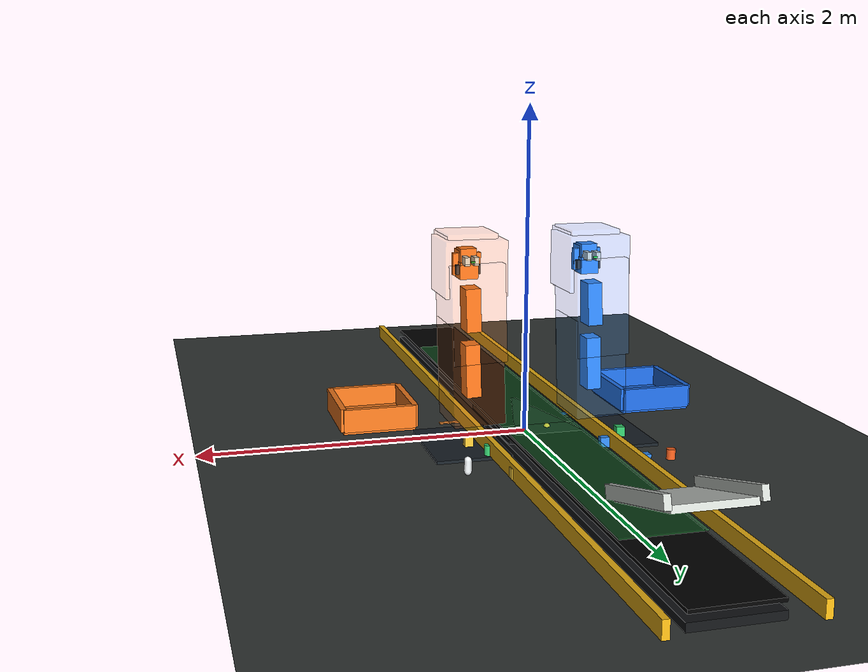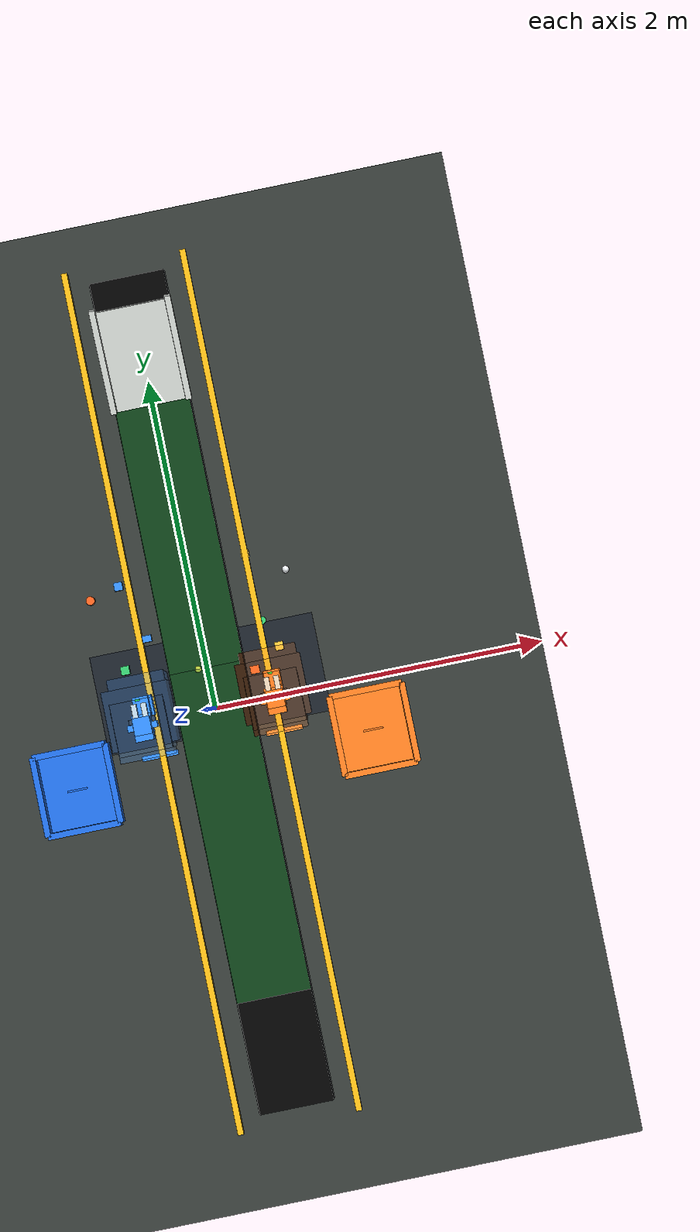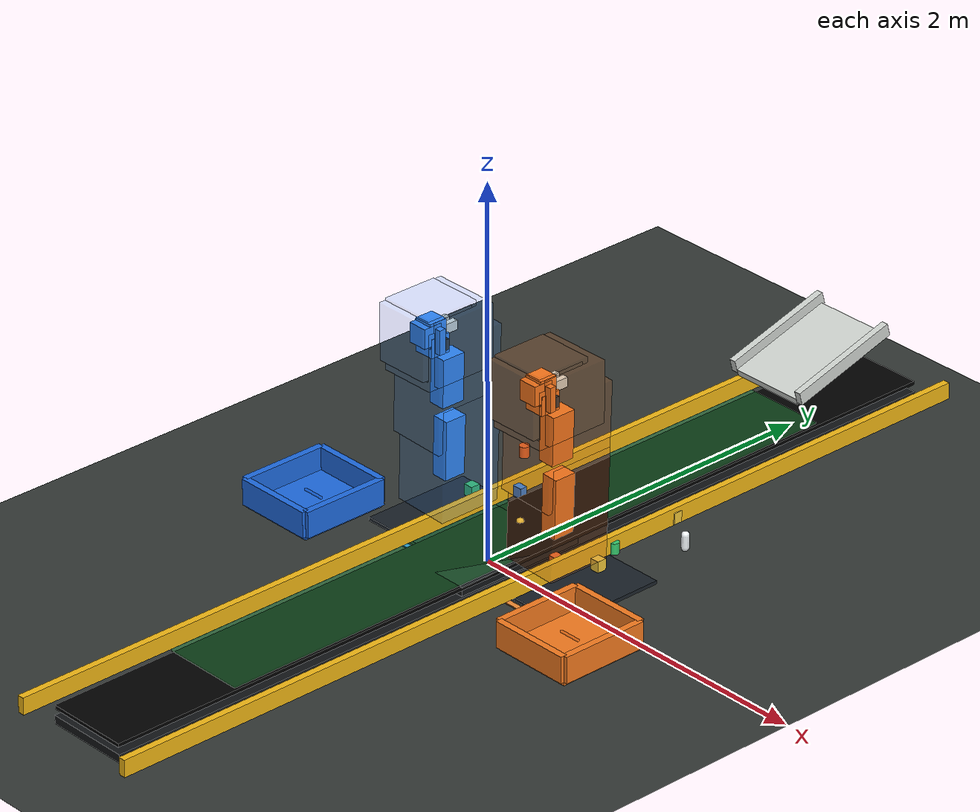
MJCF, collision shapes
<mujoco model="nova5_dual_arm_sorting_line">
  <compiler angle="radian" autolimits="true"/>

  <option timestep="0.002" gravity="0 0 -9.81" integrator="implicitfast"/>

  <visual>
    <global azimuth="140" elevation="-28"/>
    <map force="0.1" znear="0.01"/>
    <headlight ambient="0.38 0.38 0.38" diffuse="0.72 0.72 0.72" specular="0.12 0.12 0.12"/>
  </visual>

  <default>
    <joint damping="2.0" armature="0.02" frictionloss="0.02"/>
    <geom contype="0" conaffinity="0" density="0"/>
    <site type="box" rgba="0.1 0.45 0.9 0.8"/>
  </default>

  <asset>
    <material name="floor_mat" rgba="0.20 0.22 0.21 1"/>
    <material name="rail_mat" rgba="0.82 0.84 0.82 1"/>
    <material name="station_mat" rgba="0.10 0.13 0.16 1"/>
    <material name="tray_mat" rgba="0.28 0.30 0.31 1"/>
    <material name="slot_mat" rgba="0.95 0.96 0.92 1"/>
    <material name="part_blue" rgba="0.20 0.55 0.95 1"/>
    <material name="part_green" rgba="0.20 0.78 0.42 1"/>
    <material name="part_yellow" rgba="0.95 0.78 0.22 1"/>
    <material name="part_orange" rgba="0.96 0.38 0.12 1"/>
    <material name="part_white" rgba="0.92 0.94 0.95 1"/>
    <material name="gripper_mat" rgba="0.16 0.18 0.20 1"/>
    <material name="finger_mat" rgba="0.88 0.90 0.86 1"/>
    <material name="belt_mat" rgba="0.07 0.08 0.09 1"/>
    <material name="guard_mat" rgba="0.95 0.72 0.08 0.32"/>
    <material name="reject_mat" rgba="0.82 0.20 0.16 1"/>
    <material name="finished_mat" rgba="0.20 0.68 0.42 1"/>
    <material name="left_bin_mat" rgba="0.12 0.42 0.88 1"/>
    <material name="right_bin_mat" rgba="0.96 0.48 0.12 1"/>
    <material name="sensor_mat" rgba="0.10 0.92 0.78 0.85"/>

    <mesh name="base_link" content_type="model/stl" file="../meshes/nova5/base_link.STL"/>
    <mesh name="Link1" content_type="model/stl" file="../meshes/nova5/Link1.STL"/>
    <mesh name="Link2" content_type="model/stl" file="../meshes/nova5/Link2.STL"/>
    <mesh name="Link3" content_type="model/stl" file="../meshes/nova5/Link3.STL"/>
    <mesh name="Link4" content_type="model/stl" file="../meshes/nova5/Link4.STL"/>
    <mesh name="Link5" content_type="model/stl" file="../meshes/nova5/Link5.STL"/>
    <mesh name="Link6" content_type="model/stl" file="../meshes/nova5/Link6.STL"/>
  </asset>

  <worldbody>
    <light name="top_light" pos="0 -0.4 3.0" dir="0 0 -1"/>
    <light name="infeed_light" pos="0 1.2 1.4" dir="0 -1 -0.6"/>

    <geom name="floor" type="plane" pos="0 0 -0.002" size="2.0 3.0 0.02" material="floor_mat" contype="32" conaffinity="32"/>

    <!-- Upstream feeder. Parts enter the long conveyor from this end. -->
    <body name="sloped_outlet" pos="0 2.12 0.35">
      <geom name="outlet_ramp" type="box" size="0.205 0.30 0.018" euler="0.28 0 0" material="rail_mat" contype="1" conaffinity="24" friction="0.10 0.01 0.001"/>
      <geom name="outlet_left_rail" type="box" pos="-0.225 0 0.035" size="0.018 0.31 0.035" euler="0.28 0 0" material="rail_mat" contype="1" conaffinity="24"/>
      <geom name="outlet_right_rail" type="box" pos="0.225 0 0.035" size="0.018 0.31 0.035" euler="0.28 0 0" material="rail_mat" contype="1" conaffinity="24"/>
    </body>

    <!-- An eight-segment, physics-driven conveyor. Python moves each segment
         downstream; contact friction carries free objects without teleporting them. -->
    <body name="conveyor_frame" pos="0 0.10 0">
      <geom name="conveyor_safety_underlay" type="box" pos="0 0 0.022" size="0.230 2.53 0.022" material="belt_mat" contype="32" conaffinity="32" friction="0.8 0.02 0.001"/>
      <!-- Low guide rails leave a top-entry opening for the physical gripper. -->
      <!-- Rails sit outside the 45 cm belt surface. This preserves physical
           containment without stealing the gripper's edge-pick clearance. -->
      <!-- Guard layer is distinct from the belt layer: finger pads may skim
           the moving belt, but no finger or arm may pass through the guards. -->
      <geom name="conveyor_left_guard" type="box" pos="-0.360 0 0.075" size="0.018 2.62 0.045" material="guard_mat" contype="2" conaffinity="0"/>
      <geom name="conveyor_right_guard" type="box" pos="0.360 0 0.075" size="0.018 2.62 0.045" material="guard_mat" contype="2" conaffinity="0"/>
      <site name="vision_pick_window" pos="0 0 0.135" size="0.210 1.85 0.003" rgba="0 0 0 0"/>
      <site name="infeed_part_present" pos="0 2.15 0.135" size="0.205 0.08 0.004" rgba="0 0 0 0"/>
      <site name="tail_exit_sensor" pos="0 -2.35 0.135" size="0.205 0.08 0.004" rgba="0 0 0 0"/>
    </body>
    <body name="conveyor_collision_surface" pos="0 0.10 0">
      <!-- Match the moving segment top (z=0.10 m) so payloads cannot fall
           through at a segment seam or collide with two different heights. -->
      <geom name="conveyor_belt_collision" type="box" pos="0 0 0.090" size="0.225 2.53 0.010" material="belt_mat" rgba="0 0 0 0" contype="32" conaffinity="32" friction="1.4 0.02 0.001"/>
    </body>
    <geom name="shared_belt_front_test_zone" type="box" pos="0 1.10 0.116" size="0.225 0.85 0.004" rgba="0.20 0.90 0.35 0.28" contype="0" conaffinity="0"/>
    <geom name="shared_belt_back_test_zone" type="box" pos="0 -0.75 0.116" size="0.225 1.00 0.004" rgba="0.20 0.90 0.35 0.28" contype="0" conaffinity="0"/>
    <body name="belt_segment_01" pos="0 0 0.075">
      <joint name="belt_segment_01_slide" type="slide" axis="0 1 0" limited="false"/>
      <geom name="belt_segment_01_geom" type="box" size="0.225 0.37 0.025" material="belt_mat" mass="3" contype="32" conaffinity="32" friction="1.4 0.02 0.001"/>
    </body>
    <body name="belt_segment_02" pos="0 0 0.075">
      <joint name="belt_segment_02_slide" type="slide" axis="0 1 0" limited="false"/>
      <geom name="belt_segment_02_geom" type="box" size="0.225 0.37 0.025" material="belt_mat" mass="3" contype="32" conaffinity="32" friction="1.4 0.02 0.001"/>
    </body>
    <body name="belt_segment_03" pos="0 0 0.075">
      <joint name="belt_segment_03_slide" type="slide" axis="0 1 0" limited="false"/>
      <geom name="belt_segment_03_geom" type="box" size="0.225 0.37 0.025" material="belt_mat" mass="3" contype="32" conaffinity="32" friction="1.4 0.02 0.001"/>
    </body>
    <body name="belt_segment_04" pos="0 0 0.075">
      <joint name="belt_segment_04_slide" type="slide" axis="0 1 0" limited="false"/>
      <geom name="belt_segment_04_geom" type="box" size="0.225 0.37 0.025" material="belt_mat" mass="3" contype="32" conaffinity="32" friction="1.4 0.02 0.001"/>
    </body>
    <body name="belt_segment_05" pos="0 0 0.075">
      <joint name="belt_segment_05_slide" type="slide" axis="0 1 0" limited="false"/>
      <geom name="belt_segment_05_geom" type="box" size="0.225 0.37 0.025" material="belt_mat" mass="3" contype="32" conaffinity="32" friction="1.4 0.02 0.001"/>
    </body>
    <body name="belt_segment_06" pos="0 0 0.075">
      <joint name="belt_segment_06_slide" type="slide" axis="0 1 0" limited="false"/>
      <geom name="belt_segment_06_geom" type="box" size="0.225 0.37 0.025" material="belt_mat" mass="3" contype="32" conaffinity="32" friction="1.4 0.02 0.001"/>
    </body>
    <body name="belt_segment_07" pos="0 0 0.075">
      <joint name="belt_segment_07_slide" type="slide" axis="0 1 0" limited="false"/>
      <geom name="belt_segment_07_geom" type="box" size="0.225 0.37 0.025" material="belt_mat" mass="3" contype="32" conaffinity="32" friction="1.4 0.02 0.001"/>
    </body>
    <body name="belt_segment_08" pos="0 0 0.075">
      <joint name="belt_segment_08_slide" type="slide" axis="0 1 0" limited="false"/>
      <geom name="belt_segment_08_geom" type="box" size="0.225 0.37 0.025" material="belt_mat" mass="3" contype="32" conaffinity="32" friction="1.4 0.02 0.001"/>
    </body>

    <!-- Physical end states: rejected parts and a finished output bin. -->

    <camera name="overhead_inspection_camera" pos="0 0.92 2.65" xyaxes="1 0 0 0 0.91 0.41" fovy="52"/>
    <camera name="line_overview_camera" pos="0 -2.10 1.85" xyaxes="1 0 0 0 0.66 0.75" fovy="52"/>

    <body name="part_01" pos="-0.42 0.83 0.065">
      <freejoint/>
      <geom type="box" size="0.025 0.025 0.030" material="part_blue" mass="0.060" contype="32" conaffinity="32" friction="2.0 0.02 0.001"/>
    </body>
    <body name="part_02" pos="-0.15 0.92 0.065">
      <freejoint/>
      <geom type="box" size="0.023 0.023 0.030" material="part_green" mass="0.060" contype="32" conaffinity="32" friction="2.0 0.02 0.001"/>
    </body>
    <body name="part_03" pos="0.36 0.87 0.065">
      <freejoint/>
      <geom type="box" size="0.024 0.024 0.030" material="part_yellow" mass="0.060" contype="32" conaffinity="32" friction="2.0 0.02 0.001"/>
    </body>
    <body name="part_04" pos="0.12 0.56 0.065">
      <freejoint/>
      <geom type="box" size="0.024 0.024 0.030" material="part_blue" mass="0.060" contype="32" conaffinity="32" friction="2.0 0.02 0.001"/>
    </body>
    <body name="part_05" pos="-0.48 0.33 0.065">
      <freejoint/>
      <geom type="box" size="0.026 0.026 0.030" material="part_green" mass="0.060" contype="32" conaffinity="32" friction="2.0 0.02 0.001"/>
    </body>
    <body name="part_06" pos="0.45 0.29 0.065">
      <freejoint/>
      <geom type="box" size="0.025 0.025 0.030" material="part_yellow" mass="0.060" contype="32" conaffinity="32" friction="2.0 0.02 0.001"/>
    </body>
    <body name="part_07" pos="-0.60 0.78 0.060">
      <freejoint/>
      <geom type="cylinder" size="0.026 0.030" material="part_orange" mass="0.060" contype="32" conaffinity="32" friction="2.0 0.02 0.001"/>
    </body>
    <body name="part_08" pos="0.58 0.73 0.074">
      <freejoint/>
      <geom type="capsule" size="0.021 0.032" material="part_white" mass="0.060" contype="32" conaffinity="32" friction="2.0 0.02 0.001"/>
    </body>
    <body name="part_09" pos="-0.32 0.49 0.062">
      <freejoint/>
      <geom type="box" size="0.032 0.020 0.030" material="part_blue" mass="0.060" contype="32" conaffinity="32" friction="2.0 0.02 0.001"/>
    </body>
    <body name="part_10" pos="0.38 0.46 0.060">
      <freejoint/>
      <geom type="cylinder" size="0.024 0.030" material="part_green" mass="0.060" contype="32" conaffinity="32" friction="2.0 0.02 0.001"/>
    </body>
    <body name="part_11" pos="-0.05 0.25 0.070">
      <freejoint/>
      <geom type="capsule" size="0.020 0.029" material="part_yellow" mass="0.027" contype="1" conaffinity="1" friction="0.10 0.02 0.001"/>
    </body>
    <body name="part_12" pos="0.28 0.18 0.064">
      <freejoint/>
      <geom type="box" size="0.028 0.024 0.017" material="part_orange" mass="0.034" contype="1" conaffinity="1" friction="0.10 0.02 0.001"/>
    </body>
    <body name="part_13" pos="-0.10 1.80 0.062">
      <freejoint/>
      <geom type="box" size="0.025 0.025 0.018" material="part_white" mass="0.035" contype="1" conaffinity="1" friction="0.10 0.02 0.001"/>
    </body>
    <body name="part_14" pos="0.12 1.45 0.060">
      <freejoint/>
      <geom type="cylinder" size="0.023 0.018" material="part_blue" mass="0.029" contype="1" conaffinity="1" friction="0.10 0.02 0.001"/>
    </body>

    <!-- Robot A station. -->
    <body name="robot_A_base" pos="-0.38 0.15 0">
      <geom name="robot_A_station_plate" type="box" pos="0 0 -0.001" size="0.30 0.30 0.012" material="station_mat" contype="1" conaffinity="24"/>
      <site name="robot_A_label" pos="0 -0.36 0.02" size="0.11 0.015 0.003" rgba="0.2 0.55 1 1"/>
      <geom name="A_base_visual" type="mesh" rgba="0.792157 0.819608 0.933333 1" mesh="base_link"/>
      <body name="A_Link1" pos="0 0 0.24">
        <inertial pos="9.18643e-06 -0.0217708 -0.0261834" quat="0.684555 0.177181 -0.176991 0.684592" mass="1.08091" diaginertia="0.00284011 0.00265963 0.00128069"/>
        <joint name="A_joint1" pos="0 0 0" axis="0 0 1" range="-3.1416 3.1416" limited="true" damping="3.0" armature="0.03"/>
        <geom name="A_Link1_visual" type="mesh" rgba="0.792157 0.819608 0.933333 1" mesh="Link1"/>
        <body name="A_Link2" quat="-0.491193 -0.49119 -0.508657 0.508654">
          <inertial pos="-0.199338 -0.00696463 0.109209" quat="-0.0124484 0.700654 0.0122458 0.713287" mass="2.54585" diaginertia="0.0643202 0.0637511 0.00275793"/>
          <joint name="A_joint2" pos="0 0 0" axis="0 0 1" range="-3.14 3.14" limited="true" damping="4.0" armature="0.04"/>
          <geom name="A_Link2_visual" type="mesh" rgba="0.792157 0.819608 0.933333 1" mesh="Link2" contype="0" conaffinity="0"/>
          <geom name="A_upper_arm_collision" type="box" pos="-0.20 -0.007 0.055" size="0.16 0.045 0.060" rgba="0.20 0.55 1 0.13" contype="8" conaffinity="17"/>
          <geom name="A_upper_arm_warning" type="box" pos="-0.20 -0.007 0.055" size="0.30 0.155 0.175" rgba="0.20 0.55 1 0.035" contype="0" conaffinity="0"/>
          <body name="A_Link3" pos="-0.399756 -0.013969 0">
            <inertial pos="-0.152357 -0.00535717 0.0198992" quat="-0.0125445 0.707695 0.0121512 0.706302" mass="1.40746" diaginertia="0.0235997 0.0232013 0.00098083"/>
            <joint name="A_joint3" pos="0 0 0" axis="0 0 1" range="-2.79 2.79" limited="true" damping="3.0" armature="0.03"/>
            <geom name="A_Link3_visual" type="mesh" rgba="0.792157 0.819608 0.933333 1" mesh="Link3" contype="0" conaffinity="0"/>
            <geom name="A_forearm_collision" type="box" pos="-0.165 -0.006 0.065" size="0.13 0.045 0.065" rgba="0.20 0.55 1 0.13" contype="8" conaffinity="17"/>
            <geom name="A_forearm_warning" type="box" pos="-0.165 -0.006 0.065" size="0.29 0.160 0.190" rgba="0.20 0.55 1 0.035" contype="0" conaffinity="0"/>
            <body name="A_Link4" pos="-0.329799 -0.0115244 0.135" quat="0.719348 0 0 -0.69465">
              <inertial pos="-6.37112e-06 -0.022759 -0.0202382" quat="0.648587 0.282308 -0.28212 0.648109" mass="0.439666" diaginertia="0.000676686 0.000634739 0.000253769"/>
              <joint name="A_joint4" pos="0 0 0" axis="0 0 1" range="-3.1416 3.1416" limited="true" damping="2.0" armature="0.02"/>
              <geom name="A_Link4_visual" type="mesh" rgba="0.792157 0.819608 0.933333 1" mesh="Link4" contype="0" conaffinity="0"/>
              <geom name="A_wrist_pitch_collision" type="box" pos="0 -0.055 0.020" size="0.055 0.050 0.055" rgba="0.20 0.55 1 0.13" contype="8" conaffinity="17"/>
              <geom name="A_wrist_pitch_warning" type="box" pos="0 -0.055 0" size="0.155 0.150 0.180" rgba="0.20 0.55 1 0.035" contype="0" conaffinity="0"/>
              <body name="A_Link5" pos="0 -0.12 0" quat="0.707105 0.707108 0 0">
                <inertial pos="-1.27926e-06 0.00190912 -0.00761119" quat="0.393821 0.587386 -0.587227 0.39376" mass="0.574835" diaginertia="0.00069052 0.000663177 0.000348157"/>
                <joint name="A_joint5" pos="0 0 0" axis="0 0 1" range="-3.1416 3.1416" limited="true" damping="2.0" armature="0.02"/>
                <geom name="A_Link5_visual" type="mesh" rgba="0.792157 0.819608 0.933333 1" mesh="Link5" contype="0" conaffinity="0"/>
                <geom name="A_wrist_yaw_collision" type="box" pos="0 0.030 0" size="0.050 0.050 0.065" rgba="0.20 0.55 1 0.13" contype="8" conaffinity="17"/>
                <geom name="A_wrist_yaw_warning" type="box" pos="0 0.030 0" size="0.150 0.150 0.165" rgba="0.20 0.55 1 0.035" contype="0" conaffinity="0"/>
                <body name="A_Link6" pos="0 0.088328 0" quat="0.707105 -0.707108 0 0">
                  <inertial pos="1.54762e-06 0.000151599 -0.0194592" quat="0.000736825 0.707106 0.000566044 0.707107" mass="0.12968" diaginertia="7.78631e-05 5.054e-05 5.02803e-05"/>
                  <joint name="A_joint6" pos="0 0 0" axis="0 0 1" range="-3.1416 3.1416" limited="true" damping="1.5" armature="0.015"/>
                  <geom name="A_Link6_visual" type="mesh" rgba="0.752941 0.752941 0.752941 1" mesh="Link6" contype="0" conaffinity="0"/>
                  <geom name="A_flange_collision" type="box" pos="0 0 -0.025" size="0.052 0.052 0.052" rgba="0.20 0.55 1 0.13" contype="8" conaffinity="17"/>
                  <geom name="A_flange_warning" type="box" pos="0 0 -0.025" size="0.152 0.152 0.152" rgba="0.20 0.55 1 0.035" contype="0" conaffinity="0"/>
                  <site name="A_flange" pos="0 0 0" size="0.018" rgba="0.2 0.5 1 1"/>
                  <body name="A_gripper" pos="0 0 -0.09">
                    <geom name="A_gripper_collision" type="box" pos="0 0.030 0.035" size="0.085 0.065 0.018" rgba="0.20 0.55 1 0.13" contype="8" conaffinity="17"/>
                    <geom name="A_gripper_warning" type="box" pos="0 0.030 -0.023" size="0.185 0.165 0.172" rgba="0.20 0.55 1 0.035" contype="0" conaffinity="0"/>
                    <geom name="A_gripper_palm" type="box" pos="0 0.060 0" size="0.075 0.028 0.014" material="gripper_mat" contype="64" conaffinity="65" mass="0.08"/>
                    <geom name="A_gripper_mount" type="cylinder" pos="0 0.060 0.035" size="0.035 0.018" material="gripper_mat" contype="64" conaffinity="65" mass="0.04"/>
                    <body name="A_left_finger" pos="-0.028 0 -0.055">
                      <joint name="A_left_finger_slide" type="slide" axis="-1 0 0" range="0 0.035" limited="true" damping="8"/>
                      <geom name="A_left_finger_pad" type="box" size="0.015 0.025 0.040" material="finger_mat" contype="32" conaffinity="33" mass="0.030" friction="4.0 0.05 0.001" solref="0.004 1" solimp="0.98 0.995 0.001" adhesion="0"/>
                    </body>
                    <body name="A_right_finger" pos="0.028 0 -0.055">
                      <joint name="A_right_finger_slide" type="slide" axis="1 0 0" range="0 0.035" limited="true" damping="8"/>
                      <geom name="A_right_finger_pad" type="box" size="0.015 0.025 0.040" material="finger_mat" contype="32" conaffinity="33" mass="0.030" friction="4.0 0.05 0.001" solref="0.004 1" solimp="0.98 0.995 0.001" adhesion="0"/>
                    </body>
                    <site name="A_tool0" pos="0 0 -0.115" size="0.012" rgba="0.1 0.9 0.2 1"/>
                    <site name="A_grasp_zone" type="box" pos="0 0 -0.055" size="0.040 0.026 0.042" rgba="0.10 0.92 0.78 0.20"/>
                  </body>
                </body>
              </body>
            </body>
          </body>
        </body>
      </body>
    </body>

    <!-- Robot B station. -->
    <body name="robot_B_base" pos="0.38 0.15 0">
      <geom name="robot_B_station_plate" type="box" pos="0 0 -0.001" size="0.30 0.30 0.012" material="station_mat" contype="1" conaffinity="24"/>
      <site name="robot_B_label" pos="0 -0.36 0.02" size="0.11 0.015 0.003" rgba="0.95 0.55 0.2 1"/>
      <geom name="B_base_visual" type="mesh" rgba="0.792157 0.819608 0.933333 1" mesh="base_link"/>
      <body name="B_Link1" pos="0 0 0.24">
        <inertial pos="9.18643e-06 -0.0217708 -0.0261834" quat="0.684555 0.177181 -0.176991 0.684592" mass="1.08091" diaginertia="0.00284011 0.00265963 0.00128069"/>
        <joint name="B_joint1" pos="0 0 0" axis="0 0 1" range="-3.1416 3.1416" limited="true" damping="3.0" armature="0.03"/>
        <geom name="B_Link1_visual" type="mesh" rgba="0.792157 0.819608 0.933333 1" mesh="Link1"/>
        <body name="B_Link2" quat="-0.491193 -0.49119 -0.508657 0.508654">
          <inertial pos="-0.199338 -0.00696463 0.109209" quat="-0.0124484 0.700654 0.0122458 0.713287" mass="2.54585" diaginertia="0.0643202 0.0637511 0.00275793"/>
          <joint name="B_joint2" pos="0 0 0" axis="0 0 1" range="-3.14 3.14" limited="true" damping="4.0" armature="0.04"/>
          <geom name="B_Link2_visual" type="mesh" rgba="0.792157 0.819608 0.933333 1" mesh="Link2" contype="0" conaffinity="0"/>
          <geom name="B_upper_arm_collision" type="box" pos="-0.20 -0.007 0.055" size="0.16 0.045 0.060" rgba="1.00 0.48 0.12 0.13" contype="16" conaffinity="9"/>
          <geom name="B_upper_arm_warning" type="box" pos="-0.20 -0.007 0.055" size="0.30 0.155 0.175" rgba="1.00 0.48 0.12 0.035" contype="0" conaffinity="0"/>
          <body name="B_Link3" pos="-0.399756 -0.013969 0">
            <inertial pos="-0.152357 -0.00535717 0.0198992" quat="-0.0125445 0.707695 0.0121512 0.706302" mass="1.40746" diaginertia="0.0235997 0.0232013 0.00098083"/>
            <joint name="B_joint3" pos="0 0 0" axis="0 0 1" range="-2.79 2.79" limited="true" damping="3.0" armature="0.03"/>
            <geom name="B_Link3_visual" type="mesh" rgba="0.792157 0.819608 0.933333 1" mesh="Link3" contype="0" conaffinity="0"/>
            <geom name="B_forearm_collision" type="box" pos="-0.165 -0.006 0.065" size="0.13 0.045 0.065" rgba="1.00 0.48 0.12 0.13" contype="16" conaffinity="9"/>
            <geom name="B_forearm_warning" type="box" pos="-0.165 -0.006 0.065" size="0.29 0.160 0.190" rgba="1.00 0.48 0.12 0.035" contype="0" conaffinity="0"/>
            <body name="B_Link4" pos="-0.329799 -0.0115244 0.135" quat="0.719348 0 0 -0.69465">
              <inertial pos="-6.37112e-06 -0.022759 -0.0202382" quat="0.648587 0.282308 -0.28212 0.648109" mass="0.439666" diaginertia="0.000676686 0.000634739 0.000253769"/>
              <joint name="B_joint4" pos="0 0 0" axis="0 0 1" range="-3.1416 3.1416" limited="true" damping="2.0" armature="0.02"/>
              <geom name="B_Link4_visual" type="mesh" rgba="0.792157 0.819608 0.933333 1" mesh="Link4" contype="0" conaffinity="0"/>
              <geom name="B_wrist_pitch_collision" type="box" pos="0 -0.055 0.020" size="0.055 0.050 0.055" rgba="1.00 0.48 0.12 0.13" contype="16" conaffinity="9"/>
              <geom name="B_wrist_pitch_warning" type="box" pos="0 -0.055 0" size="0.155 0.150 0.180" rgba="1.00 0.48 0.12 0.035" contype="0" conaffinity="0"/>
              <body name="B_Link5" pos="0 -0.12 0" quat="0.707105 0.707108 0 0">
                <inertial pos="-1.27926e-06 0.00190912 -0.00761119" quat="0.393821 0.587386 -0.587227 0.39376" mass="0.574835" diaginertia="0.00069052 0.000663177 0.000348157"/>
                <joint name="B_joint5" pos="0 0 0" axis="0 0 1" range="-3.1416 3.1416" limited="true" damping="2.0" armature="0.02"/>
                <geom name="B_Link5_visual" type="mesh" rgba="0.792157 0.819608 0.933333 1" mesh="Link5" contype="0" conaffinity="0"/>
                <geom name="B_wrist_yaw_collision" type="box" pos="0 0.030 0" size="0.050 0.050 0.065" rgba="1.00 0.48 0.12 0.13" contype="16" conaffinity="9"/>
                <geom name="B_wrist_yaw_warning" type="box" pos="0 0.030 0" size="0.150 0.150 0.165" rgba="1.00 0.48 0.12 0.035" contype="0" conaffinity="0"/>
                <body name="B_Link6" pos="0 0.088328 0" quat="0.707105 -0.707108 0 0">
                  <inertial pos="1.54762e-06 0.000151599 -0.0194592" quat="0.000736825 0.707106 0.000566044 0.707107" mass="0.12968" diaginertia="7.78631e-05 5.054e-05 5.02803e-05"/>
                  <joint name="B_joint6" pos="0 0 0" axis="0 0 1" range="-3.1416 3.1416" limited="true" damping="1.5" armature="0.015"/>
                  <geom name="B_Link6_visual" type="mesh" rgba="0.752941 0.752941 0.752941 1" mesh="Link6" contype="0" conaffinity="0"/>
                  <geom name="B_flange_collision" type="box" pos="0 0 -0.025" size="0.052 0.052 0.052" rgba="1.00 0.48 0.12 0.13" contype="16" conaffinity="9"/>
                  <geom name="B_flange_warning" type="box" pos="0 0 -0.025" size="0.152 0.152 0.152" rgba="1.00 0.48 0.12 0.035" contype="0" conaffinity="0"/>
                  <site name="B_flange" pos="0 0 0" size="0.018" rgba="0.2 0.5 1 1"/>
                  <body name="B_gripper" pos="0 0 -0.09">
                    <geom name="B_gripper_collision" type="box" pos="0 0.030 0.035" size="0.085 0.065 0.018" rgba="1.00 0.48 0.12 0.13" contype="16" conaffinity="9"/>
                    <geom name="B_gripper_warning" type="box" pos="0 0.030 -0.023" size="0.185 0.165 0.172" rgba="1.00 0.48 0.12 0.035" contype="0" conaffinity="0"/>
                    <geom name="B_gripper_palm" type="box" pos="0 0.060 0" size="0.075 0.028 0.014" material="gripper_mat" contype="64" conaffinity="65" mass="0.08"/>
                    <geom name="B_gripper_mount" type="cylinder" pos="0 0.060 0.035" size="0.035 0.018" material="gripper_mat" contype="64" conaffinity="65" mass="0.04"/>
                    <body name="B_left_finger" pos="-0.028 0 -0.055">
                      <joint name="B_left_finger_slide" type="slide" axis="-1 0 0" range="0 0.035" limited="true" damping="8"/>
                      <geom name="B_left_finger_pad" type="box" size="0.015 0.025 0.040" material="finger_mat" contype="32" conaffinity="33" mass="0.030" friction="4.0 0.05 0.001" solref="0.004 1" solimp="0.98 0.995 0.001" adhesion="0"/>
                    </body>
                    <body name="B_right_finger" pos="0.028 0 -0.055">
                      <joint name="B_right_finger_slide" type="slide" axis="1 0 0" range="0 0.035" limited="true" damping="8"/>
                      <geom name="B_right_finger_pad" type="box" size="0.015 0.025 0.040" material="finger_mat" contype="32" conaffinity="33" mass="0.030" friction="4.0 0.05 0.001" solref="0.004 1" solimp="0.98 0.995 0.001" adhesion="0"/>
                    </body>
                    <site name="B_tool0" pos="0 0 -0.115" size="0.012" rgba="0.1 0.9 0.2 1"/>
                    <site name="B_grasp_zone" type="box" pos="0 0 -0.055" size="0.040 0.026 0.042" rgba="0.10 0.92 0.78 0.20"/>
                  </body>
                </body>
              </body>
            </body>
          </body>
        </body>
      </body>
    </body>

    <!-- Visible output trays for the dual-arm sorting demonstration. -->
    <body name="left_output_tray" pos="-0.90 -0.31 0.055">
      <geom name="left_tray_floor" type="box" size="0.22 0.24 0.018" material="left_bin_mat" contype="32" conaffinity="32"/>
      <geom type="box" pos="-0.22 0 0.07" size="0.018 0.24 0.07" material="left_bin_mat" contype="2" conaffinity="32"/>
      <geom type="box" pos="0.22 0 0.07" size="0.018 0.24 0.07" material="left_bin_mat" contype="2" conaffinity="32"/>
      <geom type="box" pos="0 -0.24 0.07" size="0.22 0.018 0.07" material="left_bin_mat" contype="2" conaffinity="32"/>
      <geom type="box" pos="0 0.24 0.07" size="0.22 0.018 0.07" material="left_bin_mat" contype="2" conaffinity="32"/>
      <site name="left_bin_drop" pos="0 0 0.055" size="0.06" rgba="0.1 0.45 1 0.35"/>
    </body>
    <body name="right_output_tray" pos="0.90 -0.31 0.055">
      <geom name="right_tray_floor" type="box" size="0.22 0.24 0.018" material="right_bin_mat" contype="32" conaffinity="32"/>
      <geom type="box" pos="-0.22 0 0.07" size="0.018 0.24 0.07" material="right_bin_mat" contype="2" conaffinity="32"/>
      <geom type="box" pos="0.22 0 0.07" size="0.018 0.24 0.07" material="right_bin_mat" contype="2" conaffinity="32"/>
      <geom type="box" pos="0 -0.24 0.07" size="0.22 0.018 0.07" material="right_bin_mat" contype="2" conaffinity="32"/>
      <geom type="box" pos="0 0.24 0.07" size="0.22 0.018 0.07" material="right_bin_mat" contype="2" conaffinity="32"/>
      <site name="right_bin_drop" pos="0 0 0.055" size="0.06" rgba="1 0.45 0.1 0.35"/>
    </body>
  </worldbody>

  <contact>
    <!-- The underlay catches parts at seams but must not collide with belt plates. -->
    <exclude body1="conveyor_frame" body2="belt_segment_01"/>
    <exclude body1="conveyor_frame" body2="belt_segment_02"/>
    <exclude body1="conveyor_frame" body2="belt_segment_03"/>
    <exclude body1="conveyor_frame" body2="belt_segment_04"/>
    <exclude body1="conveyor_frame" body2="belt_segment_05"/>
    <exclude body1="conveyor_frame" body2="belt_segment_06"/>
    <exclude body1="conveyor_frame" body2="belt_segment_07"/>
    <exclude body1="conveyor_frame" body2="belt_segment_08"/>
    <exclude body1="conveyor_collision_surface" body2="belt_segment_01"/>
    <exclude body1="conveyor_collision_surface" body2="belt_segment_02"/>
    <exclude body1="conveyor_collision_surface" body2="belt_segment_03"/>
    <exclude body1="conveyor_collision_surface" body2="belt_segment_04"/>
    <exclude body1="conveyor_collision_surface" body2="belt_segment_05"/>
    <exclude body1="conveyor_collision_surface" body2="belt_segment_06"/>
    <exclude body1="conveyor_collision_surface" body2="belt_segment_07"/>
    <exclude body1="conveyor_collision_surface" body2="belt_segment_08"/>
    <exclude body1="A_gripper" body2="B_gripper"/>
    <exclude body1="A_left_finger" body2="B_left_finger"/>
    <exclude body1="A_left_finger" body2="B_right_finger"/>
    <exclude body1="A_right_finger" body2="B_left_finger"/>
    <exclude body1="A_right_finger" body2="B_right_finger"/>
    <!-- A station plate is the mounting surface of its own arm; it is not a
         moving obstacle for that arm's links. -->
    <exclude body1="robot_A_base" body2="A_Link1"/>
    <exclude body1="robot_A_base" body2="A_Link2"/>
    <exclude body1="robot_A_base" body2="A_Link3"/>
    <exclude body1="robot_A_base" body2="A_Link4"/>
    <exclude body1="robot_A_base" body2="A_Link5"/>
    <exclude body1="robot_A_base" body2="A_Link6"/>
    <exclude body1="robot_B_base" body2="B_Link1"/>
    <exclude body1="robot_B_base" body2="B_Link2"/>
    <exclude body1="robot_B_base" body2="B_Link3"/>
    <exclude body1="robot_B_base" body2="B_Link4"/>
    <exclude body1="robot_B_base" body2="B_Link5"/>
    <exclude body1="robot_B_base" body2="B_Link6"/>
  </contact>

  <actuator>
    <position name="A_joint1_position" joint="A_joint1" kp="300" ctrllimited="true" ctrlrange="-3.1416 3.1416" forcelimited="true" forcerange="-160 160"/>
    <position name="A_joint2_position" joint="A_joint2" kp="400" ctrllimited="true" ctrlrange="-3.14 3.14" forcelimited="true" forcerange="-240 240"/>
    <position name="A_joint3_position" joint="A_joint3" kp="350" ctrllimited="true" ctrlrange="-2.79 2.79" forcelimited="true" forcerange="-180 180"/>
    <position name="A_joint4_position" joint="A_joint4" kp="250" ctrllimited="true" ctrlrange="-3.1416 3.1416" forcelimited="true" forcerange="-100 100"/>
    <position name="A_joint5_position" joint="A_joint5" kp="220" ctrllimited="true" ctrlrange="-3.1416 3.1416" forcelimited="true" forcerange="-80 80"/>
    <position name="A_joint6_position" joint="A_joint6" kp="150" ctrllimited="true" ctrlrange="-3.1416 3.1416" forcelimited="true" forcerange="-50 50"/>
    <position name="A_left_finger_position" joint="A_left_finger_slide" kp="300" ctrllimited="true" ctrlrange="0 0.035" forcelimited="true" forcerange="-20 20"/>
    <position name="A_right_finger_position" joint="A_right_finger_slide" kp="300" ctrllimited="true" ctrlrange="0 0.035" forcelimited="true" forcerange="-20 20"/>

    <position name="B_joint1_position" joint="B_joint1" kp="300" ctrllimited="true" ctrlrange="-3.1416 3.1416" forcelimited="true" forcerange="-160 160"/>
    <position name="B_joint2_position" joint="B_joint2" kp="400" ctrllimited="true" ctrlrange="-3.14 3.14" forcelimited="true" forcerange="-240 240"/>
    <position name="B_joint3_position" joint="B_joint3" kp="350" ctrllimited="true" ctrlrange="-2.79 2.79" forcelimited="true" forcerange="-180 180"/>
    <position name="B_joint4_position" joint="B_joint4" kp="250" ctrllimited="true" ctrlrange="-3.1416 3.1416" forcelimited="true" forcerange="-100 100"/>
    <position name="B_joint5_position" joint="B_joint5" kp="220" ctrllimited="true" ctrlrange="-3.1416 3.1416" forcelimited="true" forcerange="-80 80"/>
    <position name="B_joint6_position" joint="B_joint6" kp="150" ctrllimited="true" ctrlrange="-3.1416 3.1416" forcelimited="true" forcerange="-50 50"/>
    <position name="B_left_finger_position" joint="B_left_finger_slide" kp="300" ctrllimited="true" ctrlrange="0 0.035" forcelimited="true" forcerange="-20 20"/>
    <position name="B_right_finger_position" joint="B_right_finger_slide" kp="300" ctrllimited="true" ctrlrange="0 0.035" forcelimited="true" forcerange="-20 20"/>
  </actuator>

  <sensor>
    <framepos name="A_tool_position" objtype="site" objname="A_tool0"/>
    <framequat name="A_tool_orientation" objtype="site" objname="A_tool0"/>
    <framepos name="B_tool_position" objtype="site" objname="B_tool0"/>
    <framequat name="B_tool_orientation" objtype="site" objname="B_tool0"/>
    <framepos name="infeed_present_position" objtype="site" objname="infeed_part_present"/>
    <framepos name="pick_window_position" objtype="site" objname="vision_pick_window"/>
  </sensor>
</mujoco>
